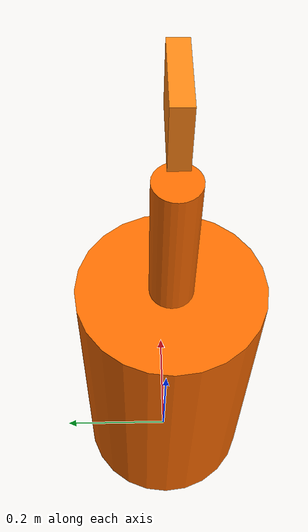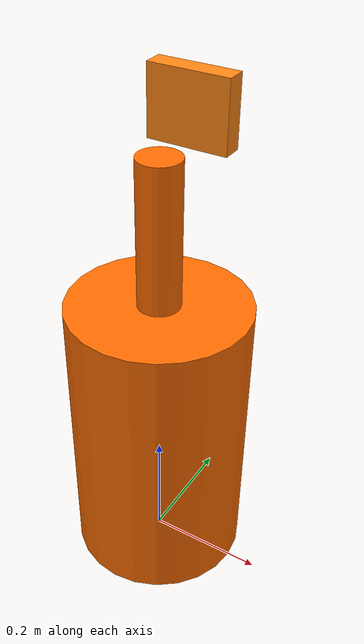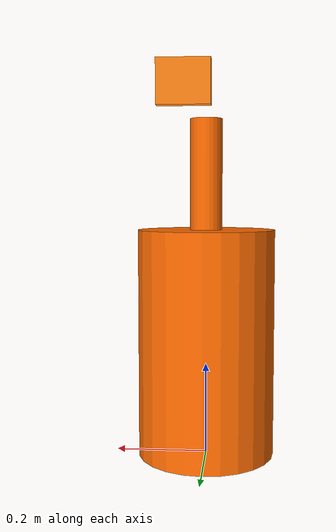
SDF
<?xml version="1.0" ?>
<sdf version="1.9">
  <model name="boundary_buoy_orange">
    <!-- Simulation colors must match perception class colors. -->
    <static>true</static>
    <link name="link">
      <collision name="body_collision">
        <pose>0 0 0.25 0 0 0</pose>
        <geometry>
          <cylinder>
            <radius>0.15</radius>
            <length>0.50</length>
          </cylinder>
        </geometry>
      </collision>
      <collision name="mast_collision">
        <pose>0 0 0.62 0 0 0</pose>
        <geometry>
          <cylinder>
            <radius>0.035</radius>
            <length>0.24</length>
          </cylinder>
        </geometry>
      </collision>
      <visual name="body_visual">
        <pose>0 0 0.25 0 0 0</pose>
        <geometry>
          <cylinder>
            <radius>0.15</radius>
            <length>0.50</length>
          </cylinder>
        </geometry>
        <material>
          <ambient>1.00 0.42 0.00 1</ambient>
          <diffuse>1.00 0.42 0.00 1</diffuse>
          <specular>0.10 0.10 0.10 1</specular>
        </material>
      </visual>
      <visual name="mast_visual">
        <pose>0 0 0.62 0 0 0</pose>
        <geometry>
          <cylinder>
            <radius>0.035</radius>
            <length>0.24</length>
          </cylinder>
        </geometry>
        <material>
          <ambient>1.00 0.42 0.00 1</ambient>
          <diffuse>1.00 0.42 0.00 1</diffuse>
        </material>
      </visual>
      <visual name="flag_visual">
        <pose>0.05 0 0.82 0 0 0</pose>
        <geometry>
          <box>
            <size>0.12 0.03 0.10</size>
          </box>
        </geometry>
        <material>
          <ambient>1.00 0.52 0.08 1</ambient>
          <diffuse>1.00 0.52 0.08 1</diffuse>
        </material>
      </visual>
    </link>
  </model>
</sdf>
